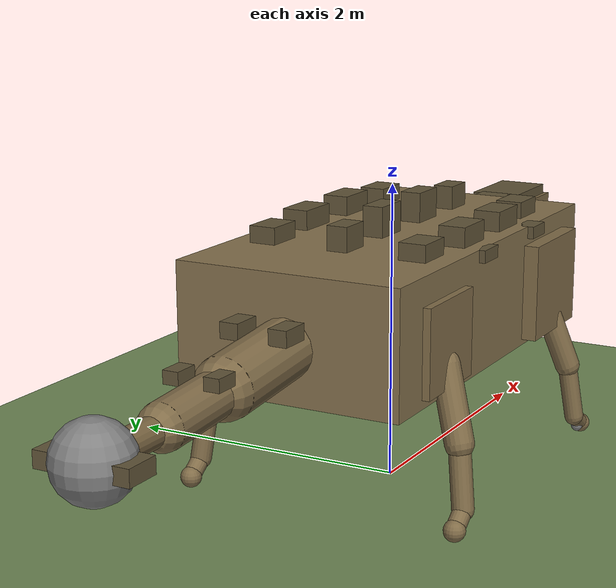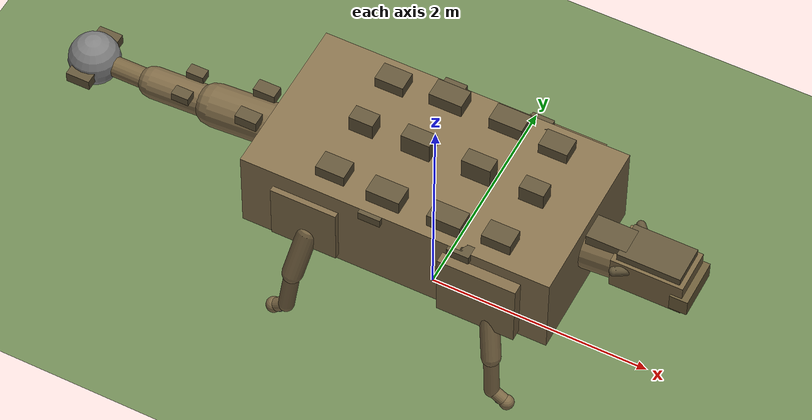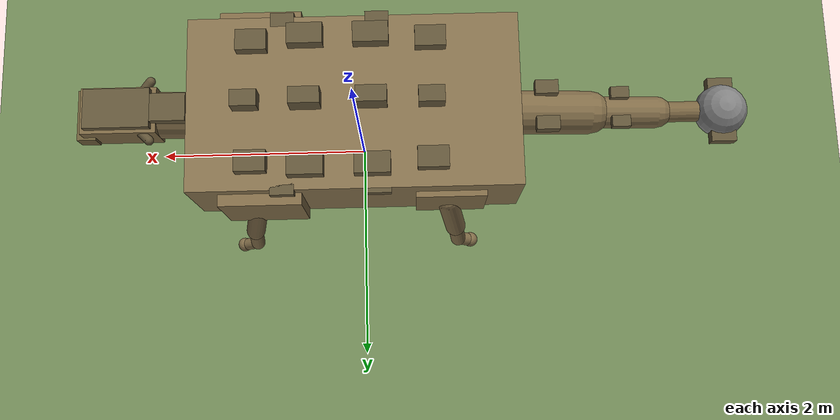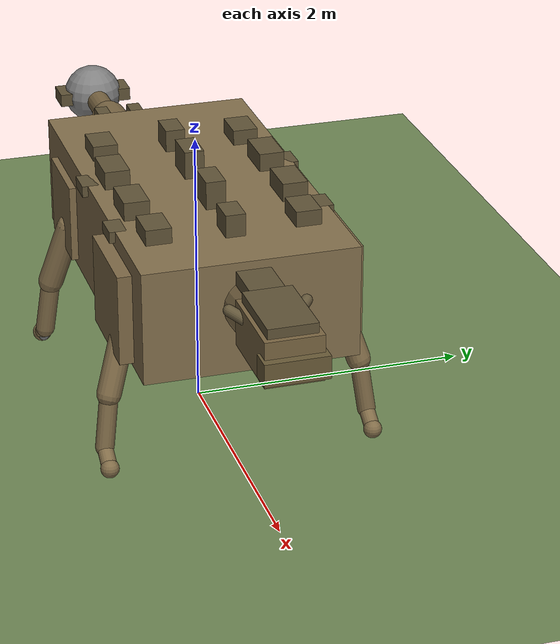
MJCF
<mujoco model="ankylosaurus">

  <compiler angle="degree" inertiafromgeom="true" autolimits="true"/>

  <option
    timestep="0.005"
    iterations="50"
    solver="PGS"
    gravity="0 0 -9.81"
    integrator="RK4"
  />

  <size nstack="3000000"/>

  <default>
    <joint limited="true" damping="1.0" armature="0.02" frictionloss="0.1"/>
    <geom contype="1" conaffinity="1" condim="3" friction="1.2 0.1 0.1"/>
    <motor ctrllimited="true" ctrlrange="-1 1"/>

    <!-- Armor: contributes to mass/CoM, no self-collision -->
    <default class="armor">
      <geom contype="2" conaffinity="0" rgba="0.38 0.33 0.22 1"/>
    </default>

    <!-- Legs: skin color -->
    <default class="leg">
      <geom rgba="0.50 0.42 0.28 1"/>
    </default>

    <default class="club">
      <geom contype="4" conaffinity="4" rgba="0.72 0.68 0.58 1" friction="0.8 0.1 0.1"/>
    </default>
  </default>

  <asset>
    <texture type="skybox" builtin="gradient"
             rgb1="0.65 0.78 0.55" rgb2="0.35 0.52 0.28"
             width="256" height="256"/>
    <texture type="2d" name="ground_tex" builtin="checker"
             rgb1="0.48 0.58 0.38" rgb2="0.38 0.48 0.28"
             width="512" height="512"/>
    <material name="ground_mat" texture="ground_tex" texrepeat="6 6" reflectance="0.1"/>
  </asset>

  <worldbody>
    <light name="sun" pos="0 0 12" dir="0 -0.4 -1"
           diffuse="0.95 0.92 0.85" specular="0.2 0.2 0.2"
           directional="true" castshadow="true"/>
    <geom name="floor" type="plane" size="30 30 0.1"
          material="ground_mat" contype="1" conaffinity="1"/>

    <body name="torso" pos="0 0 1.30">
      <freejoint name="root"/>

      <!-- IMU site at torso centre for sensor readings -->
      <site name="imu" pos="0 0 0" size="0.01"/>

      <geom name="torso_main" type="box"
            size="1.40 0.75 0.40" pos="0 0 0"
            mass="3000" rgba="0.52 0.44 0.30 1"/>

      <!-- Shoulder girdle: pectoral region wide in ankylosaurs -->
      <geom name="shoulder_girdle" type="box"
            size="0.35 0.85 0.32" pos="0.80 0 -0.04"
            mass="200" rgba="0.50 0.42 0.28 1"/>

      <!-- Hip girdle: broad horizontal ilia -->
      <geom name="hip_girdle" type="box"
            size="0.30 0.80 0.28" pos="-0.80 0 -0.06"
            mass="200" rgba="0.50 0.42 0.28 1"/>

      <!-- OSTEODERM ARMOR                                  -->
      <!-- Passive geoms — shift CoM DOWN to ~40% height   -->
      <!-- contype=2 / conaffinity=0: no self-collision     -->

      <!-- Lateral paravertebral rows -->
      <geom class="armor" name="os_R1_L" type="box" size="0.13 0.09 0.07" pos=" 0.85  0.52 0.44" mass="18"/>
      <geom class="armor" name="os_R1_R" type="box" size="0.13 0.09 0.07" pos=" 0.85 -0.52 0.44" mass="18"/>
      <geom class="armor" name="os_R2_L" type="box" size="0.15 0.09 0.08" pos=" 0.40  0.56 0.45" mass="22"/>
      <geom class="armor" name="os_R2_R" type="box" size="0.15 0.09 0.08" pos=" 0.40 -0.56 0.45" mass="22"/>
      <geom class="armor" name="os_R3_L" type="box" size="0.15 0.09 0.08" pos="-0.15  0.56 0.45" mass="22"/>
      <geom class="armor" name="os_R3_R" type="box" size="0.15 0.09 0.08" pos="-0.15 -0.56 0.45" mass="22"/>
      <geom class="armor" name="os_R4_L" type="box" size="0.13 0.09 0.07" pos="-0.65  0.52 0.44" mass="18"/>
      <geom class="armor" name="os_R4_R" type="box" size="0.13 0.09 0.07" pos="-0.65 -0.52 0.44" mass="18"/>

      <!-- Midline keel plates -->
      <geom class="armor" name="os_mid1" type="box" size="0.11 0.07 0.10" pos=" 0.90 0 0.46" mass="14"/>
      <geom class="armor" name="os_mid2" type="box" size="0.13 0.07 0.12" pos=" 0.40 0 0.48" mass="18"/>
      <geom class="armor" name="os_mid3" type="box" size="0.13 0.07 0.12" pos="-0.15 0 0.48" mass="18"/>
      <geom class="armor" name="os_mid4" type="box" size="0.11 0.07 0.10" pos="-0.65 0 0.46" mass="14"/>

      <!-- Lateral flank scutes -->
      <geom class="armor" name="os_flank_L1" type="box" size="0.10 0.06 0.04" pos=" 0.60  0.73 0.36" mass="8"/>
      <geom class="armor" name="os_flank_R1" type="box" size="0.10 0.06 0.04" pos=" 0.60 -0.73 0.36" mass="8"/>
      <geom class="armor" name="os_flank_L2" type="box" size="0.10 0.06 0.04" pos="-0.20  0.73 0.36" mass="8"/>
      <geom class="armor" name="os_flank_R2" type="box" size="0.10 0.06 0.04" pos="-0.20 -0.73 0.36" mass="8"/>

      <!-- NECK                                          -->
      <!-- Short, stiff, nearly horizontal               -->
      <!-- 2 DOF: pitch (−20°→+30°) + yaw (±40°)        -->
      <body name="neck" pos="1.40 0 0.08">
        <joint name="neck_pitch" type="hinge" axis="0 1 0"
               range="-20 30" damping="6.0" stiffness="20"/>
        <joint name="neck_yaw"   type="hinge" axis="0 0 1"
               range="-40 40" damping="6.0" stiffness="15"/>
        <geom name="neck_geom" type="capsule"
              fromto="0 0 0  0.42 0 0.04"
              size="0.20" mass="120" rgba="0.50 0.42 0.28 1"/>
        <geom class="armor" name="os_neck_top" type="box"
              size="0.18 0.12 0.05" pos="0.20 0 0.22" mass="12"/>

        <!-- HEAD                                      -->
        <!-- 1 DOF: head_pitch (−15°→+20°)            -->
        <!-- Broad flat skull with squamosal horns     -->
        <body name="head" pos="0.42 0 0.04">
          <joint name="head_pitch" type="hinge" axis="0 1 0"
                 range="-15 20" damping="3.0" stiffness="10"/>
          <geom name="skull" type="box"
                size="0.32 0.20 0.16" pos="0.18 0 0"
                mass="75" rgba="0.48 0.40 0.26 1"/>
          <geom name="beak" type="box"
                size="0.08 0.22 0.08" pos="0.48 0 -0.04"
                mass="20" rgba="0.42 0.36 0.22 1"/>
          <geom class="armor" name="skull_scute" type="box"
                size="0.28 0.17 0.05" pos="0.18 0 0.18" mass="22"/>
          <!-- Squamosal horns: diagnostic Ankylosaurus feature -->
          <geom class="armor" name="horn_L" type="capsule"
                fromto="0 0.18 0.08  -0.08 0.26 0.12" size="0.04" mass="6"/>
          <geom class="armor" name="horn_R" type="capsule"
                fromto="0 -0.18 0.08 -0.08 -0.26 0.12" size="0.04" mass="6"/>
          <site name="head_site" pos="0.18 0 0" size="0.05"/>
        </body>
      </body>

      <!-- TAIL SYSTEM                                   -->
      <!-- 3 segments + rigid club knob                 -->
      <!-- CRITICAL CONSTRAINT (Arbour 2009):           -->
      <!--   Handle vertebrae are ossified+interlocked  -->
      <!--   → lateral swing ONLY on handle joint       -->
      <!--   → NO dorsoventral DOF distally             -->
      <!-- Club impact force: 7,281–14,360 N [FEA]     -->

      <!-- Tail Base: 2 DOF, most flexible -->
      <body name="tail_base" pos="-1.40 0 -0.05">
        <joint name="tail_base_lat" type="hinge" axis="0 0 1"
               range="-35 35" damping="4.0" stiffness="8"/>
        <joint name="tail_base_dv"  type="hinge" axis="0 1 0"
               range="-18 18" damping="4.0" stiffness="8"/>
        <geom name="tail_base_geom" type="capsule"
              fromto="0 0 0  -0.65 0 -0.06"
              size="0.19" mass="90" rgba="0.50 0.42 0.28 1"/>
        <geom class="armor" name="os_tail_base_L" type="box"
              size="0.10 0.06 0.05" pos="-0.25  0.16 0.17" mass="8"/>
        <geom class="armor" name="os_tail_base_R" type="box"
              size="0.10 0.06 0.05" pos="-0.25 -0.16 0.17" mass="8"/>

        <!-- Tail Mid: 2 DOF, progressively stiffer -->
        <body name="tail_mid" pos="-0.65 0 -0.06">
          <joint name="tail_mid_lat" type="hinge" axis="0 0 1"
                 range="-28 28" damping="3.0" stiffness="12"/>
          <joint name="tail_mid_dv"  type="hinge" axis="0 1 0"
                 range="-12 12" damping="3.0" stiffness="12"/>
          <geom name="tail_mid_geom" type="capsule"
                fromto="0 0 0  -0.60 0 -0.04"
                size="0.14" mass="55" rgba="0.50 0.42 0.28 1"/>
          <geom class="armor" name="os_tail_mid_L" type="box"
                size="0.08 0.05 0.04" pos="-0.25  0.13 0.13" mass="6"/>
          <geom class="armor" name="os_tail_mid_R" type="box"
                size="0.08 0.05 0.04" pos="-0.25 -0.13 0.13" mass="6"/>

          <body name="tail_handle" pos="-0.60 0 -0.04">
            <joint name="tail_handle_lat" type="hinge" axis="0 0 1"
                   range="-60 60" damping="2.0" stiffness="5"/>
            <geom name="tail_handle_geom" type="capsule"
                  fromto="0 0 0  -0.58 0 0"
                  size="0.09" mass="28" rgba="0.48 0.40 0.26 1"/>

            <body name="tail_club" pos="-0.58 0 0">
              <geom class="club" name="club_knob" type="sphere"
                    size="0.22" mass="30"/>
              <geom class="armor" name="club_plate_L" type="box"
                    size="0.11 0.09 0.05" pos="0 0.20 0" mass="6"/>
              <geom class="armor" name="club_plate_R" type="box"
                    size="0.11 0.09 0.05" pos="0 -0.20 0" mass="6"/>
              <site name="club_site" pos="0 0 0" size="0.23" type="sphere"/>
            </body>
          </body>
        </body>
      </body>

      <!-- LEGS — WIDE-GAUGE QUADRUPED                  -->
      <!-- Hip attachment at y=±0.75 (wide-gauge)       -->
      <!-- Femur angles DOWN-AND-OUT (not columnar)     -->
      <!-- 5 DOF per leg × 4 legs = 20 DOF total        -->
      <!-- Joint ranges from:                           -->
      <!--   - Acetabulum orientation (fossil)          -->
      <!--   - Wide-gauge trackway stride analysis      -->
      <!--   - Elephant/rhino comparative biomechanics  -->

      <!-- FRONT LEFT -->
      <body name="hip_FL" pos="0.88  0.75 -0.22">
        <joint name="hip_FL_abduct" type="hinge" axis="1 0 0"
               range="-15 15" damping="10.0" stiffness="30"/>
        <joint name="hip_FL_flex"   type="hinge" axis="0 1 0"
               range="-40 60" damping="10.0" stiffness="20"/>
        <joint name="hip_FL_rotate" type="hinge" axis="0 0 1"
               range="-20 20" damping="6.0"  stiffness="15"/>
        <geom class="leg" name="femur_FL" type="capsule"
              fromto="0 0 0  0.10 0.14 -0.44" size="0.085" mass="65"/>
        <body name="knee_FL" pos="0.10 0.14 -0.44">
          <joint name="knee_FL" type="hinge" axis="0 1 0"
                 range="-5 120" damping="6.0" stiffness="15"/>
          <geom class="leg" name="tibia_FL" type="capsule"
                fromto="0 0 0  0.04 0.05 -0.38" size="0.065" mass="32"/>
          <body name="ankle_FL" pos="0.04 0.05 -0.38">
            <joint name="ankle_FL" type="hinge" axis="0 1 0"
                   range="-35 35" damping="3.5" stiffness="10"/>
            <geom class="leg" name="foot_FL" type="capsule"
                  fromto="0 0 0  0.14 0 -0.09" size="0.055" mass="16"/>
            <geom class="leg" name="toe_FL" type="sphere"
                  size="0.065" pos="0.14 0 -0.09" mass="5"/>
            <site name="foot_FL_site" pos="0.07 0 -0.09" size="0.04"/>
          </body>
        </body>
      </body>

      <!-- FRONT RIGHT -->
      <body name="hip_FR" pos="0.88 -0.75 -0.22">
        <joint name="hip_FR_abduct" type="hinge" axis="1 0 0"
               range="-15 15" damping="10.0" stiffness="30"/>
        <joint name="hip_FR_flex"   type="hinge" axis="0 1 0"
               range="-40 60" damping="10.0" stiffness="20"/>
        <joint name="hip_FR_rotate" type="hinge" axis="0 0 1"
               range="-20 20" damping="6.0"  stiffness="15"/>
        <geom class="leg" name="femur_FR" type="capsule"
              fromto="0 0 0  0.10 -0.14 -0.44" size="0.085" mass="65"/>
        <body name="knee_FR" pos="0.10 -0.14 -0.44">
          <joint name="knee_FR" type="hinge" axis="0 1 0"
                 range="-5 120" damping="6.0" stiffness="15"/>
          <geom class="leg" name="tibia_FR" type="capsule"
                fromto="0 0 0  0.04 -0.05 -0.38" size="0.065" mass="32"/>
          <body name="ankle_FR" pos="0.04 -0.05 -0.38">
            <joint name="ankle_FR" type="hinge" axis="0 1 0"
                   range="-35 35" damping="3.5" stiffness="10"/>
            <geom class="leg" name="foot_FR" type="capsule"
                  fromto="0 0 0  0.14 0 -0.09" size="0.055" mass="16"/>
            <geom class="leg" name="toe_FR" type="sphere"
                  size="0.065" pos="0.14 0 -0.09" mass="5"/>
            <site name="foot_FR_site" pos="0.07 0 -0.09" size="0.04"/>
          </body>
        </body>
      </body>

      <!-- REAR LEFT (slightly larger — hindlimbs bear more load) -->
      <body name="hip_RL" pos="-0.78  0.75 -0.20">
        <joint name="hip_RL_abduct" type="hinge" axis="1 0 0"
               range="-15 15" damping="11.0" stiffness="35"/>
        <joint name="hip_RL_flex"   type="hinge" axis="0 1 0"
               range="-40 60" damping="11.0" stiffness="22"/>
        <joint name="hip_RL_rotate" type="hinge" axis="0 0 1"
               range="-20 20" damping="7.0"  stiffness="18"/>
        <geom class="leg" name="femur_RL" type="capsule"
              fromto="0 0 0  -0.08 0.14 -0.46" size="0.092" mass="72"/>
        <body name="knee_RL" pos="-0.08 0.14 -0.46">
          <joint name="knee_RL" type="hinge" axis="0 1 0"
                 range="-5 120" damping="7.0" stiffness="18"/>
          <geom class="leg" name="tibia_RL" type="capsule"
                fromto="0 0 0  -0.04 0.05 -0.40" size="0.070" mass="36"/>
          <body name="ankle_RL" pos="-0.04 0.05 -0.40">
            <joint name="ankle_RL" type="hinge" axis="0 1 0"
                   range="-35 35" damping="4.0" stiffness="12"/>
            <geom class="leg" name="foot_RL" type="capsule"
                  fromto="0 0 0  -0.12 0 -0.09" size="0.060" mass="18"/>
            <geom class="leg" name="toe_RL" type="sphere"
                  size="0.070" pos="-0.12 0 -0.09" mass="6"/>
            <site name="foot_RL_site" pos="-0.06 0 -0.09" size="0.04"/>
          </body>
        </body>
      </body>

      <!-- REAR RIGHT -->
      <body name="hip_RR" pos="-0.78 -0.75 -0.20">
        <joint name="hip_RR_abduct" type="hinge" axis="1 0 0"
               range="-15 15" damping="11.0" stiffness="35"/>
        <joint name="hip_RR_flex"   type="hinge" axis="0 1 0"
               range="-40 60" damping="11.0" stiffness="22"/>
        <joint name="hip_RR_rotate" type="hinge" axis="0 0 1"
               range="-20 20" damping="7.0"  stiffness="18"/>
        <geom class="leg" name="femur_RR" type="capsule"
              fromto="0 0 0  -0.08 -0.14 -0.46" size="0.092" mass="72"/>
        <body name="knee_RR" pos="-0.08 -0.14 -0.46">
          <joint name="knee_RR" type="hinge" axis="0 1 0"
                 range="-5 120" damping="7.0" stiffness="18"/>
          <geom class="leg" name="tibia_RR" type="capsule"
                fromto="0 0 0  -0.04 -0.05 -0.40" size="0.070" mass="36"/>
          <body name="ankle_RR" pos="-0.04 -0.05 -0.40">
            <joint name="ankle_RR" type="hinge" axis="0 1 0"
                   range="-35 35" damping="4.0" stiffness="12"/>
            <geom class="leg" name="foot_RR" type="capsule"
                  fromto="0 0 0  -0.12 0 -0.09" size="0.060" mass="18"/>
            <geom class="leg" name="toe_RR" type="sphere"
                  size="0.070" pos="-0.12 0 -0.09" mass="6"/>
            <site name="foot_RR_site" pos="-0.06 0 -0.09" size="0.04"/>
          </body>
        </body>
      </body>

    </body><!-- end torso -->
  </worldbody>

  <actuator>
    <!-- Neck + head -->
    <motor name="act_neck_pitch"  joint="neck_pitch"  gear="180"/>
    <motor name="act_neck_yaw"    joint="neck_yaw"    gear="180"/>
    <motor name="act_head_pitch"  joint="head_pitch"  gear=" 90"/>

    <!-- Front Left -->
    <motor name="act_hip_FL_abduct" joint="hip_FL_abduct" gear="520"/>
    <motor name="act_hip_FL_flex"   joint="hip_FL_flex"   gear="850"/>
    <motor name="act_hip_FL_rotate" joint="hip_FL_rotate" gear="320"/>
    <motor name="act_knee_FL"       joint="knee_FL"       gear="650"/>
    <motor name="act_ankle_FL"      joint="ankle_FL"      gear="220"/>

    <!-- Front Right -->
    <motor name="act_hip_FR_abduct" joint="hip_FR_abduct" gear="520"/>
    <motor name="act_hip_FR_flex"   joint="hip_FR_flex"   gear="850"/>
    <motor name="act_hip_FR_rotate" joint="hip_FR_rotate" gear="320"/>
    <motor name="act_knee_FR"       joint="knee_FR"       gear="650"/>
    <motor name="act_ankle_FR"      joint="ankle_FR"      gear="220"/>

    <!-- Rear Left (higher torque) -->
    <motor name="act_hip_RL_abduct" joint="hip_RL_abduct" gear="580"/>
    <motor name="act_hip_RL_flex"   joint="hip_RL_flex"   gear="950"/>
    <motor name="act_hip_RL_rotate" joint="hip_RL_rotate" gear="370"/>
    <motor name="act_knee_RL"       joint="knee_RL"       gear="720"/>
    <motor name="act_ankle_RL"      joint="ankle_RL"      gear="260"/>

    <!-- Rear Right -->
    <motor name="act_hip_RR_abduct" joint="hip_RR_abduct" gear="580"/>
    <motor name="act_hip_RR_flex"   joint="hip_RR_flex"   gear="950"/>
    <motor name="act_hip_RR_rotate" joint="hip_RR_rotate" gear="370"/>
    <motor name="act_knee_RR"       joint="knee_RR"       gear="720"/>
    <motor name="act_ankle_RR"      joint="ankle_RR"      gear="260"/>

    <!-- Tail (gear increases toward club for whip-crack dynamics) -->
    <motor name="act_tail_base_lat"   joint="tail_base_lat"   gear="420"/>
    <motor name="act_tail_base_dv"    joint="tail_base_dv"    gear="320"/>
    <motor name="act_tail_mid_lat"    joint="tail_mid_lat"    gear="340"/>
    <motor name="act_tail_mid_dv"     joint="tail_mid_dv"     gear="240"/>
    <!-- Handle: HIGH gear — strike weapon. Arbour 2009: up to 14,360 N impact -->
    <motor name="act_tail_handle_lat" joint="tail_handle_lat" gear="600"/>
  </actuator>

  <sensor>
    <!-- IMU sensors at indices 0–9 (matching BaseDinoEnv defaults) -->
    <!-- gyro: indices 0-2, accel: indices 3-5, quat: indices 6-9  -->
    <gyro        name="torso_gyro"   site="imu"/>
    <accelerometer name="torso_accel" site="imu"/>
    <framequat   name="torso_quat"   objtype="site" objname="imu"/>

    <!-- Foot contact touch sensors: indices 10-13 -->
    <touch name="touch_FL" site="foot_FL_site"/>
    <touch name="touch_FR" site="foot_FR_site"/>
    <touch name="touch_RL" site="foot_RL_site"/>
    <touch name="touch_RR" site="foot_RR_site"/>

    <!-- Club strike sensor: index 14 -->
    <touch name="touch_club" site="club_site"/>

    <!-- Joint positions (28 dims): indices 15-42 -->
    <jointpos name="pos_neck_pitch"     joint="neck_pitch"/>
    <jointpos name="pos_neck_yaw"       joint="neck_yaw"/>
    <jointpos name="pos_head_pitch"     joint="head_pitch"/>
    <jointpos name="pos_hip_FL_ab"      joint="hip_FL_abduct"/>
    <jointpos name="pos_hip_FL_fl"      joint="hip_FL_flex"/>
    <jointpos name="pos_hip_FL_ro"      joint="hip_FL_rotate"/>
    <jointpos name="pos_knee_FL"        joint="knee_FL"/>
    <jointpos name="pos_ankle_FL"       joint="ankle_FL"/>
    <jointpos name="pos_hip_FR_ab"      joint="hip_FR_abduct"/>
    <jointpos name="pos_hip_FR_fl"      joint="hip_FR_flex"/>
    <jointpos name="pos_hip_FR_ro"      joint="hip_FR_rotate"/>
    <jointpos name="pos_knee_FR"        joint="knee_FR"/>
    <jointpos name="pos_ankle_FR"       joint="ankle_FR"/>
    <jointpos name="pos_hip_RL_ab"      joint="hip_RL_abduct"/>
    <jointpos name="pos_hip_RL_fl"      joint="hip_RL_flex"/>
    <jointpos name="pos_hip_RL_ro"      joint="hip_RL_rotate"/>
    <jointpos name="pos_knee_RL"        joint="knee_RL"/>
    <jointpos name="pos_ankle_RL"       joint="ankle_RL"/>
    <jointpos name="pos_hip_RR_ab"      joint="hip_RR_abduct"/>
    <jointpos name="pos_hip_RR_fl"      joint="hip_RR_flex"/>
    <jointpos name="pos_hip_RR_ro"      joint="hip_RR_rotate"/>
    <jointpos name="pos_knee_RR"        joint="knee_RR"/>
    <jointpos name="pos_ankle_RR"       joint="ankle_RR"/>
    <jointpos name="pos_tail_base_lat"  joint="tail_base_lat"/>
    <jointpos name="pos_tail_base_dv"   joint="tail_base_dv"/>
    <jointpos name="pos_tail_mid_lat"   joint="tail_mid_lat"/>
    <jointpos name="pos_tail_mid_dv"    joint="tail_mid_dv"/>
    <jointpos name="pos_tail_handle"    joint="tail_handle_lat"/>

    <!-- Joint velocities (28 dims): indices 43-70 -->
    <jointvel name="vel_neck_pitch"     joint="neck_pitch"/>
    <jointvel name="vel_neck_yaw"       joint="neck_yaw"/>
    <jointvel name="vel_head_pitch"     joint="head_pitch"/>
    <jointvel name="vel_hip_FL_ab"      joint="hip_FL_abduct"/>
    <jointvel name="vel_hip_FL_fl"      joint="hip_FL_flex"/>
    <jointvel name="vel_hip_FL_ro"      joint="hip_FL_rotate"/>
    <jointvel name="vel_knee_FL"        joint="knee_FL"/>
    <jointvel name="vel_ankle_FL"       joint="ankle_FL"/>
    <jointvel name="vel_hip_FR_ab"      joint="hip_FR_abduct"/>
    <jointvel name="vel_hip_FR_fl"      joint="hip_FR_flex"/>
    <jointvel name="vel_hip_FR_ro"      joint="hip_FR_rotate"/>
    <jointvel name="vel_knee_FR"        joint="knee_FR"/>
    <jointvel name="vel_ankle_FR"       joint="ankle_FR"/>
    <jointvel name="vel_hip_RL_ab"      joint="hip_RL_abduct"/>
    <jointvel name="vel_hip_RL_fl"      joint="hip_RL_flex"/>
    <jointvel name="vel_hip_RL_ro"      joint="hip_RL_rotate"/>
    <jointvel name="vel_knee_RL"        joint="knee_RL"/>
    <jointvel name="vel_ankle_RL"       joint="ankle_RL"/>
    <jointvel name="vel_hip_RR_ab"      joint="hip_RR_abduct"/>
    <jointvel name="vel_hip_RR_fl"      joint="hip_RR_flex"/>
    <jointvel name="vel_hip_RR_ro"      joint="hip_RR_rotate"/>
    <jointvel name="vel_knee_RR"        joint="knee_RR"/>
    <jointvel name="vel_ankle_RR"       joint="ankle_RR"/>
    <jointvel name="vel_tail_base_lat"  joint="tail_base_lat"/>
    <jointvel name="vel_tail_base_dv"   joint="tail_base_dv"/>
    <jointvel name="vel_tail_mid_lat"   joint="tail_mid_lat"/>
    <jointvel name="vel_tail_mid_dv"    joint="tail_mid_dv"/>
    <jointvel name="vel_tail_handle"    joint="tail_handle_lat"/>
  </sensor>

</mujoco>
